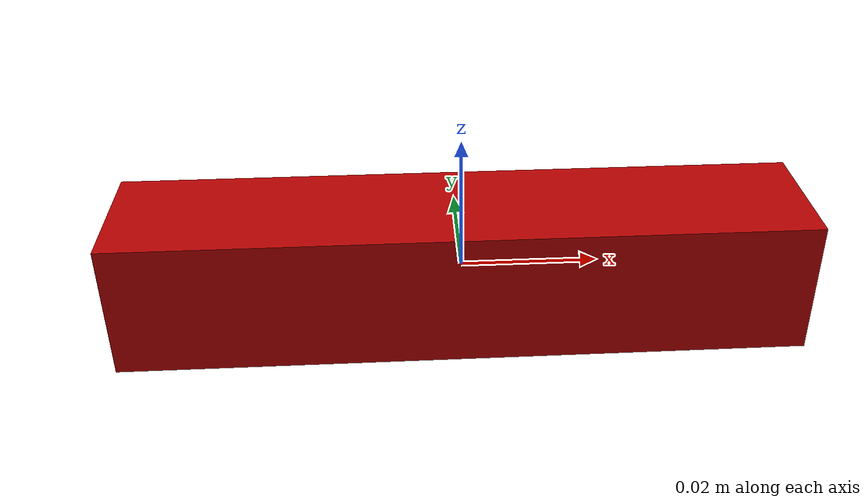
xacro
<?xml version="1.0"?>
<robot
     xmlns:xacro="http://www.ros.org/wiki/xacro" name="mobot_camera">

  <!-- add a simulated camera, including visual, collision and inertial properties, and physics simulation-->
  <link name="camera_link">
      <!-- here is the physical body (case) of the camera-->
      <collision>
          <origin xyz="0 0 0" rpy="0 0 0"/>
          <geometry>
              <box size="0.1 0.02 0.02"/>
          </geometry>
      </collision>

      <visual>
          <origin xyz="0 0 0" rpy="0 0 0" />
          <geometry>
              <box size="0.1 0.02 0.02"/>
          </geometry>
          <material name="camera_case">
              <color rgba="0.7 0.0 0.0 1.0"/>
          </material>
      </visual>

      <inertial>
          <mass value="0.1" />
          <origin xyz="0 0 0" rpy="0 0 0"/>
          <inertia ixx="0.0001" ixy="0" ixz="0" iyy="0.0001" iyz="0" izz="0.0001" />
      </inertial>
  </link>

 <!-- here is the gazebo plug-in to simulate a color camera -->
 <!--must refer to the above-defined link to place the camera in space-->
  <gazebo reference="camera_link">
   <!--optionally, displace/rotate the optical frame relative to the enclosure-->
   <pose>0.1 00 0.0 0 0 0</pose>
    <sensor type="camera" name="example_camera">
      <update_rate>30.0</update_rate>
      <camera name="example_camera">
        <!--describe some optical properties of the camera-->
        <!--field of view is expressed as an angle, in radians-->
        <horizontal_fov>1.0</horizontal_fov>
        <!--set resolution of pixels of image sensor, e.g. 640x480-->
        <image>
          <width>640</width>
          <height>480</height>
          <format>R8G8B8</format>
        </image>
        <clip>
          <!--min and max range of camera-->
          <near>0.01</near>
          <far>100.0</far>
        </clip>
        <noise>
          <!--optionally, add noise, to make images more realistic-->
          <type>gaussian</type>
          <!-- Noise is sampled independently per pixel on each frame.
               That pixel's noise value is added to each of its color
               channels, which at that point lie in the range [0,1]. -->
          <mean>0.0</mean>
          <stddev>0.007</stddev>
        </noise>
      </camera>
      <!--here is the plug-in that does the work of camera emulation-->
      <plugin name="camera_controller" filename="libgazebo_ros_camera.so">
        <alwaysOn>true</alwaysOn>
        <updateRate>10.0</updateRate> <!--can set the publication rate-->
        <cameraName>example_camera</cameraName> <!--topics will be example_camera/... -->
        <!--listen to the following topic name to get streaming images-->
        <imageTopicName>image_raw</imageTopicName>
        <!--the following topic carries info about the camera, e.g. 640x480, etc-->
        <cameraInfoTopicName>camera_info</cameraInfoTopicName>
        <!--frameName must match gazebo reference name...seems redundant-->
        <!-- this name will be the frame_id name in header of published frames-->
        <frameName>camera_link</frameName>
        <distortionK1>0.0</distortionK1>
        <distortionK2>0.0</distortionK2>
        <distortionK3>0.0</distortionK3>
        <distortionT1>0.0</distortionT1>
        <distortionT2>0.0</distortionT2>
      </plugin>
    </sensor>
  </gazebo>

</robot>
